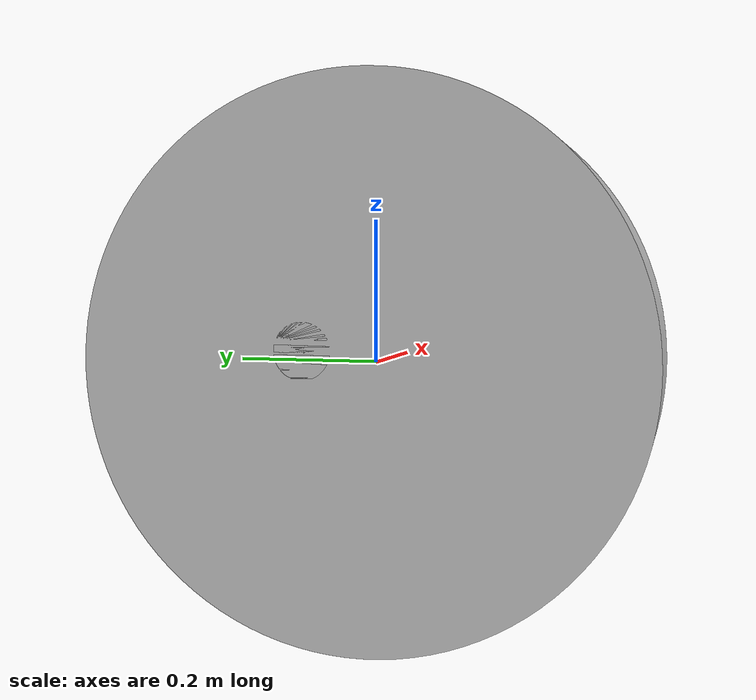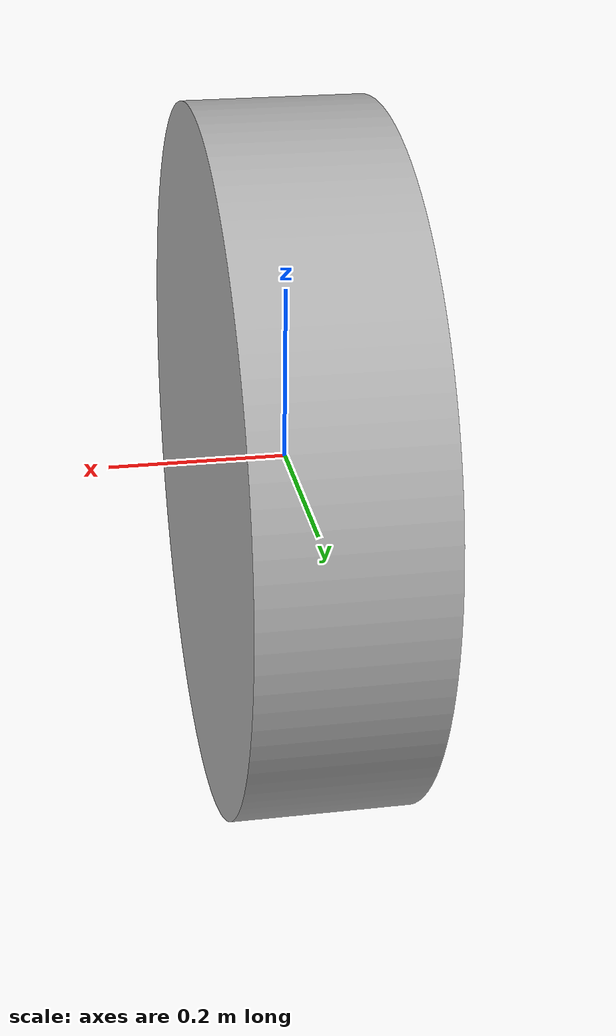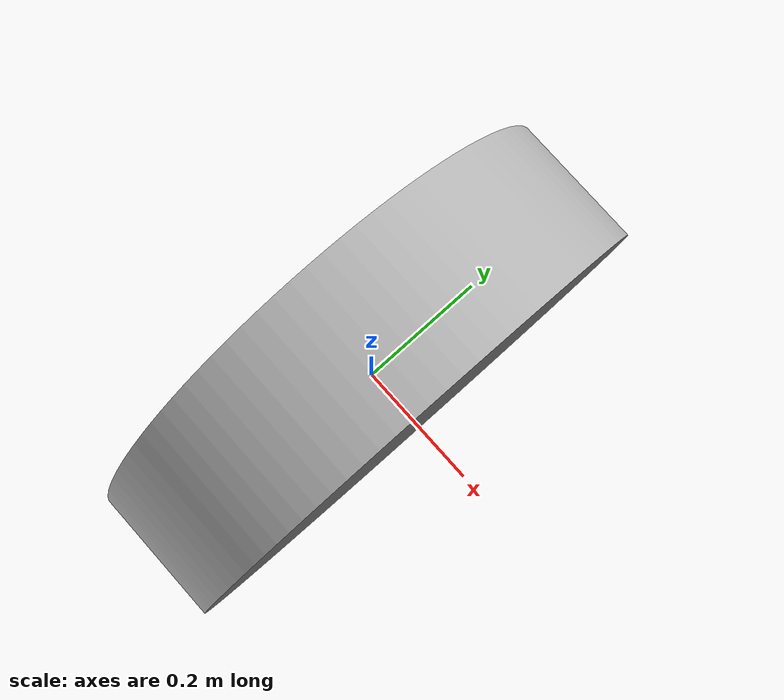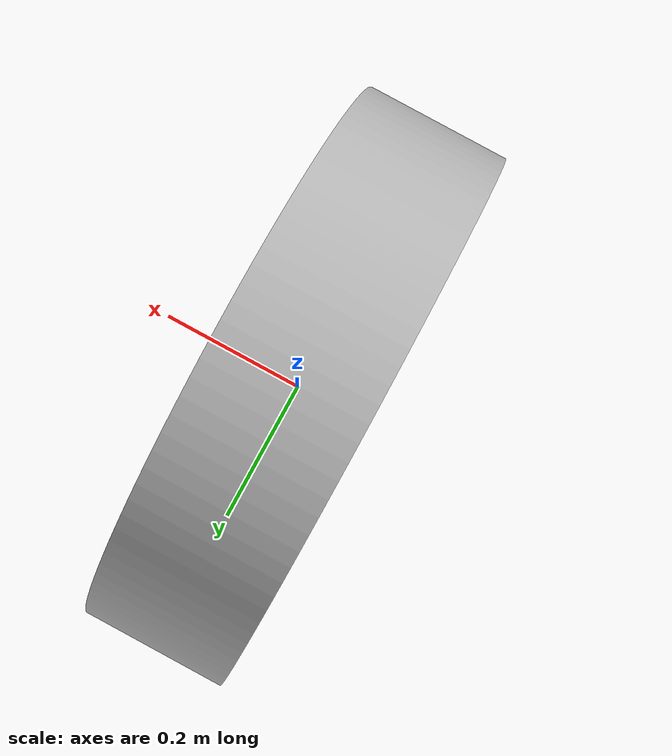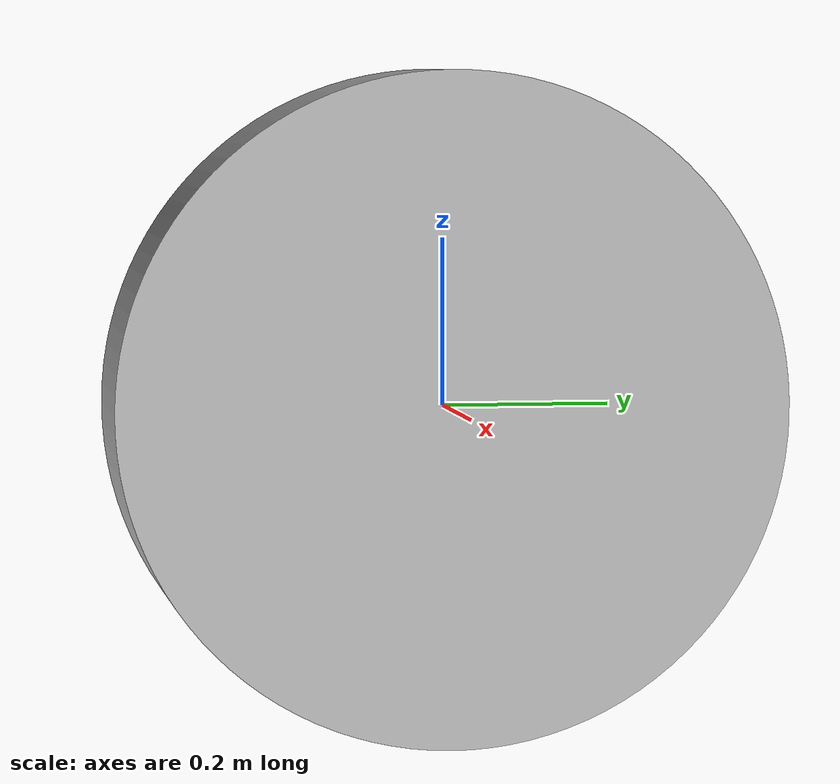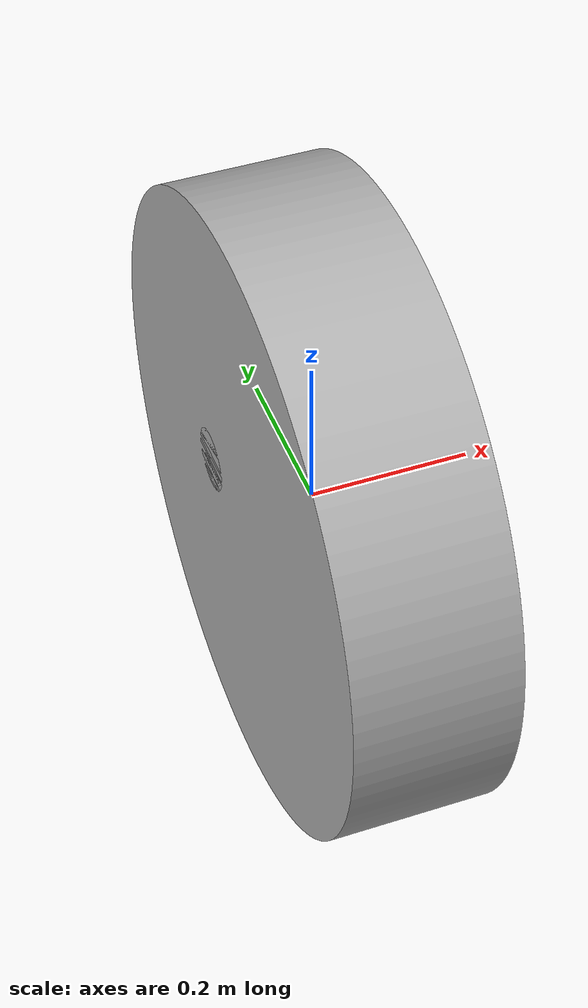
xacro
<?xml version="1.0" ?>
<robot name="(Unsaved)" xmlns:xacro="http://www.ros.org/wiki/xacro">

<xacro:include filename="$(find (Unsaved)_description)/urdf/materials.xacro" />
<xacro:include filename="$(find (Unsaved)_description)/urdf/(Unsaved).trans" />
<xacro:include filename="$(find (Unsaved)_description)/urdf/(Unsaved).gazebo" />
<link name="base_link">
  <inertial>
    <origin xyz="1.355046717905403e-13 0.009343506444008564 0.019993521445171167" rpy="0 0 0"/>
    <mass value="1.2850428455001501"/>
    <inertia ixx="0.004491" iyy="0.002568" izz="0.006705" ixy="0.0" iyz="-2e-06" ixz="0.0"/>
  </inertial>
  <visual>
    <origin xyz="0 0 0" rpy="0 0 0"/>
    <geometry>
      <mesh filename="package://(Unsaved)_description/meshes/base_link.stl" scale="0.001 0.001 0.001"/>
    </geometry>
    <material name="silver"/>
  </visual>
  <collision>
    <origin xyz="0 0 0" rpy="0 0 0"/>
    <geometry>
      <mesh filename="package://(Unsaved)_description/meshes/base_link.stl" scale="0.001 0.001 0.001"/>
    </geometry>
  </collision>
</link>

<link name="right_wheel_1">
  <inertial>
    <origin xyz="-0.009999999999999995 0.0 0.0" rpy="0 0 0"/>
    <mass value="0.09349379737083224"/>
    <inertia ixx="7.5e-05" iyy="4.1e-05" izz="4.1e-05" ixy="-0.0" iyz="0.0" ixz="0.0"/>
  </inertial>
  <visual>
    <origin xyz="0.08 -0.09 -0.02" rpy="0 0 0"/>
    <geometry>
      <mesh filename="package://(Unsaved)_description/meshes/right_wheel_1.stl" scale="0.001 0.001 0.001"/>
    </geometry>
    <material name="silver"/>
  </visual>
  <collision>
    <origin xyz="0.08 -0.09 -0.02" rpy="0 0 0"/>
    <geometry>
      <mesh filename="package://(Unsaved)_description/meshes/right_wheel_1.stl" scale="0.001 0.001 0.001"/>
    </geometry>
  </collision>
</link>

<link name="left_wheel_1">
  <inertial>
    <origin xyz="0.009999999999999995 0.0 0.0" rpy="0 0 0"/>
    <mass value="0.09349379737083224"/>
    <inertia ixx="7.5e-05" iyy="4.1e-05" izz="4.1e-05" ixy="0.0" iyz="0.0" ixz="0.0"/>
  </inertial>
  <visual>
    <origin xyz="-0.08 -0.09 -0.02" rpy="0 0 0"/>
    <geometry>
      <mesh filename="package://(Unsaved)_description/meshes/left_wheel_1.stl" scale="0.001 0.001 0.001"/>
    </geometry>
    <material name="silver"/>
  </visual>
  <collision>
    <origin xyz="-0.08 -0.09 -0.02" rpy="0 0 0"/>
    <geometry>
      <mesh filename="package://(Unsaved)_description/meshes/left_wheel_1.stl" scale="0.001 0.001 0.001"/>
    </geometry>
  </collision>
</link>

<link name="lidar_1">
  <inertial>
    <origin xyz="-3.769546289141946e-18 0.0 0.015" rpy="0 0 0"/>
    <mass value="0.039961058553662165"/>
    <inertia ixx="7e-06" iyy="7e-06" izz="8e-06" ixy="0.0" iyz="0.0" ixz="-0.0"/>
  </inertial>
  <visual>
    <origin xyz="-0.0 0.06 -0.045" rpy="0 0 0"/>
    <geometry>
      <mesh filename="package://(Unsaved)_description/meshes/lidar_1.stl" scale="0.001 0.001 0.001"/>
    </geometry>
    <material name="silver"/>
  </visual>
  <collision>
    <origin xyz="-0.0 0.06 -0.045" rpy="0 0 0"/>
    <geometry>
      <mesh filename="package://(Unsaved)_description/meshes/lidar_1.stl" scale="0.001 0.001 0.001"/>
    </geometry>
  </collision>
</link>

<joint name="Revolute 1" type="continuous">
  <origin xyz="-0.08 0.09 0.02" rpy="0 0 0"/>
  <parent link="base_link"/>
  <child link="right_wheel_1"/>
  <axis xyz="-1.0 0.0 0.0"/>
</joint>

<joint name="Revolute 2" type="continuous">
  <origin xyz="0.08 0.09 0.02" rpy="0 0 0"/>
  <parent link="base_link"/>
  <child link="left_wheel_1"/>
  <axis xyz="1.0 0.0 0.0"/>
</joint>

<joint name="Revolute 3" type="continuous">
  <origin xyz="0.0 -0.06 0.045" rpy="0 0 0"/>
  <parent link="base_link"/>
  <child link="lidar_1"/>
  <axis xyz="0.0 0.0 1.0"/>
</joint>

</robot>

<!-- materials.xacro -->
<robot name="balance" xmlns:xacro="http://www.ros.org/wiki/xacro" >

<material name="silver">
  <color rgba="0.700 0.700 0.700 1.000"/>
</material>

</robot>

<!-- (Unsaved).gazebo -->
<robot name="(Unsaved)" xmlns:xacro="http://www.ros.org/wiki/xacro" >

<xacro:property name="body_color" value="Gazebo/Silver" />

<gazebo>
  <plugin name="control" filename="libgazebo_ros_control.so"/>
</gazebo>
<gazebo reference="base_link">
  <material>${body_color}</material>
  <mu1>0.2</mu1>
  <mu2>0.2</mu2>
  <selfCollide>true</selfCollide>
  <gravity>true</gravity>
</gazebo>

<gazebo reference="right_wheel_1">
  <material>${body_color}</material>
  <mu1>0.2</mu1>
  <mu2>0.2</mu2>
  <selfCollide>true</selfCollide>
</gazebo>

<gazebo reference="left_wheel_1">
  <material>${body_color}</material>
  <mu1>0.2</mu1>
  <mu2>0.2</mu2>
  <selfCollide>true</selfCollide>
</gazebo>

<gazebo reference="lidar_1">
  <material>${body_color}</material>
  <mu1>0.2</mu1>
  <mu2>0.2</mu2>
  <selfCollide>true</selfCollide>
</gazebo>

</robot>
